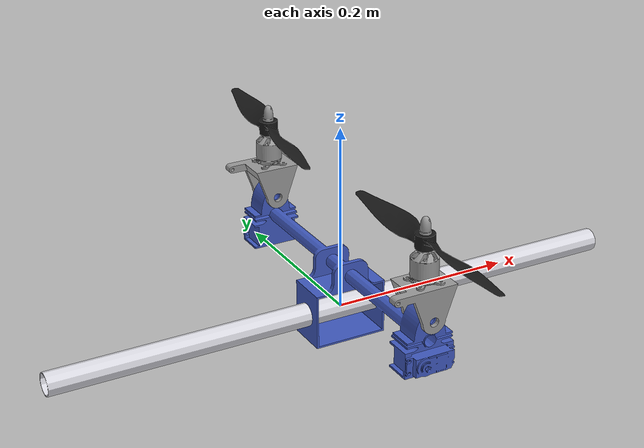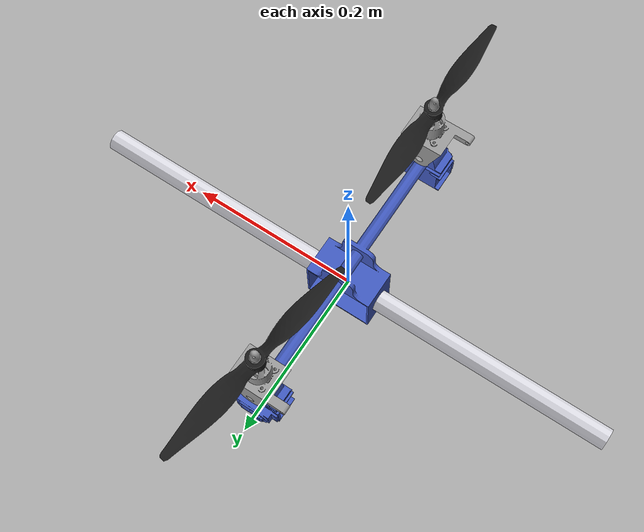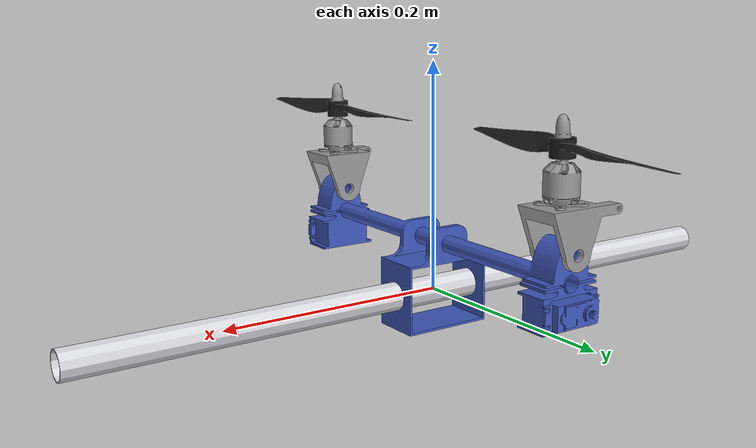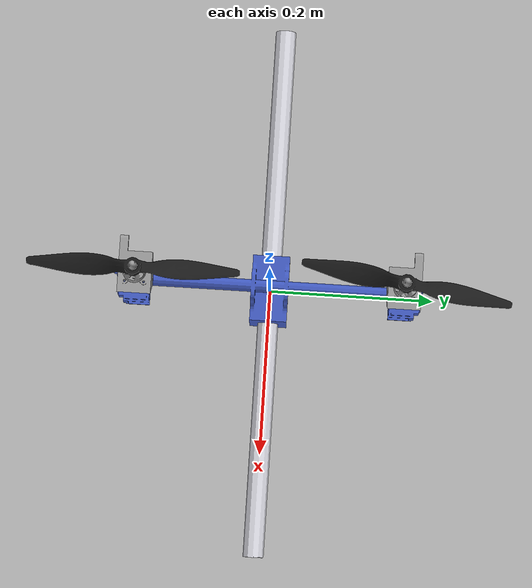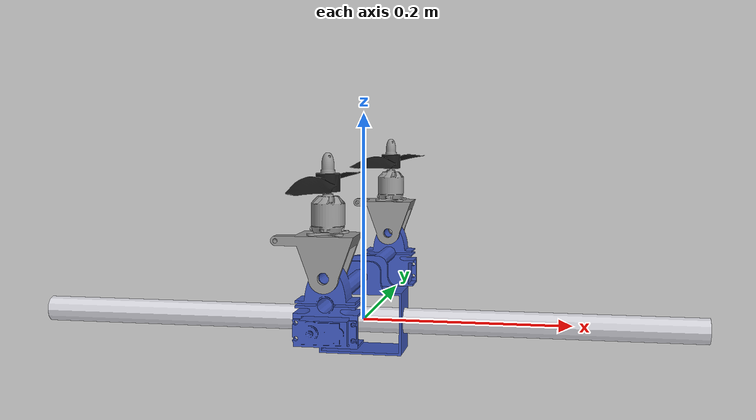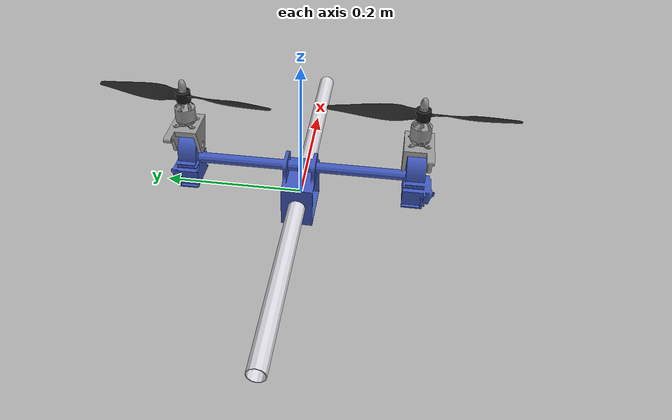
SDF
<?xml version="1.0"?>
<sdf version="1.9">
  <model name="bi_copter">
    <self_collide>false</self_collide>

    <!-- base_link = 650 mm rod + central bracket (L1) lumped together          -->
    <link name="base_link">
      <inertial>
        <pose>-2.5277653200474099e-05 0.00010758099893504231 0.01852242512855103 0 0 0</pose>
        <mass>0.30996513132738002</mass>
        <inertia>
          <ixx>0.00031301646254294779</ixx>
          <ixy>6.2788424150946687e-10</ixy>
          <ixz>1.081040236390575e-07</ixz>
          <iyy>0.0048290927913827207</iyy>
          <iyz>-4.6008776051197722e-07</iyz>
          <izz>0.0048874289798044633</izz>
        </inertia>
      </inertial>

      <collision name="rod_collision">
        <pose>0 0 0 0 1.5707963267948966 0</pose>
        <geometry>
          <cylinder>
            <length>0.65</length>
            <radius>0.0125</radius>
          </cylinder>
        </geometry>
      </collision>
      <collision name="frame_collision">
        <pose>0 0 0.024 0 0 0</pose>
        <geometry>
          <box>
            <size>0.080 0.380 0.108</size>
          </box>
        </geometry>
        <surface>
          <friction>
            <ode>
              <mu>0.8</mu>
              <mu2>0.8</mu2>
            </ode>
          </friction>
        </surface>
      </collision>

      <visual name="rod_visual">
        <geometry>
          <mesh>
            <uri>model://bi_copter_control/meshes/base_link.STL</uri>
          </mesh>
        </geometry>
        <material>
          <ambient>0.85 0.85 0.88 1</ambient>
          <diffuse>0.85 0.85 0.88 1</diffuse>
          <specular>0.3 0.3 0.3 1</specular>
        </material>
      </visual>
      <visual name="frame_visual">
        <pose>-0.018826754531935299 0.065712117311469406 -0.032330032422266598 1.5707963267949003 0 0</pose>
        <geometry>
          <mesh>
            <uri>model://bi_copter_control/meshes/L1.STL</uri>
          </mesh>
        </geometry>
        <material>
          <ambient>0.25 0.35 0.75 1</ambient>
          <diffuse>0.25 0.35 0.75 1</diffuse>
          <specular>0.2 0.2 0.2 1</specular>
        </material>
      </visual>

      <!-- ===================== sensors (PX4 compatible names) ===================== -->
      <sensor name="imu_sensor" type="imu">
        <always_on>1</always_on>
        <update_rate>250</update_rate>
        <imu>
          <angular_velocity>
            <x><noise type="gaussian"><mean>0</mean><stddev>0.0003394</stddev></noise></x>
            <y><noise type="gaussian"><mean>0</mean><stddev>0.0003394</stddev></noise></y>
            <z><noise type="gaussian"><mean>0</mean><stddev>0.0003394</stddev></noise></z>
          </angular_velocity>
          <linear_acceleration>
            <x><noise type="gaussian"><mean>0</mean><stddev>0.004</stddev></noise></x>
            <y><noise type="gaussian"><mean>0</mean><stddev>0.004</stddev></noise></y>
            <z><noise type="gaussian"><mean>0</mean><stddev>0.004</stddev></noise></z>
          </linear_acceleration>
        </imu>
      </sensor>
      <sensor name="air_pressure_sensor" type="air_pressure">
        <always_on>1</always_on>
        <update_rate>50</update_rate>
        <air_pressure>
          <pressure>
            <noise type="gaussian">
              <mean>0</mean>
              <stddev>0.01</stddev>
            </noise>
          </pressure>
        </air_pressure>
      </sensor>
      <sensor name="magnetometer_sensor" type="magnetometer">
        <always_on>1</always_on>
        <update_rate>100</update_rate>
        <magnetometer>
          <x><noise type="gaussian"><stddev>0.0001</stddev></noise></x>
          <y><noise type="gaussian"><stddev>0.0001</stddev></noise></y>
          <z><noise type="gaussian"><stddev>0.0001</stddev></noise></z>
        </magnetometer>
      </sensor>
      <sensor name="navsat_sensor" type="navsat">
        <always_on>1</always_on>
        <update_rate>30</update_rate>
      </sensor>
    </link>

    <!-- LEFT tilt servo (L2) + LEFT propeller (L4)                             -->
    <joint name="left_tilt_joint" type="revolute">
      <pose relative_to="base_link">1.4187440185199631e-05 0.141 0.068 1.5707963267948966 0 -3.1415926535897931</pose>
      <parent>base_link</parent>
      <child>left_tilt_link</child>
      <axis>
        <xyz>0 0 1</xyz>
        <limit>
          <lower>-0.5236</lower>
          <upper>0.5236</upper>
          <effort>2</effort>
          <velocity>10</velocity>
        </limit>
        <dynamics>
          <damping>0.0005</damping>
        </dynamics>
      </axis>
    </joint>
    <link name="left_tilt_link">
      <pose relative_to="left_tilt_joint">0 0 0 0 0 0</pose>
      <inertial>
        <pose>0.00063945180121196903 0.041985470493005599 0.020285614781496202 0 0 0</pose>
        <mass>0.075691766021955195</mass>
        <inertia>
          <ixx>1.3600308887235101e-05</ixx>
          <ixy>-3.4890522252550501e-07</ixy>
          <ixz>-6.7102637749309396e-07</ixz>
          <iyy>1.61394826592292e-05</iyy>
          <iyz>-1.5868331703718001e-07</iyz>
          <izz>1.35431982502197e-05</izz>
        </inertia>
      </inertial>
      <collision name="left_tilt_collision">
        <pose>0.0095 0.0447 0.02 0 0 0</pose>
        <geometry>
          <box>
            <size>0.069 0.114 0.040</size>
          </box>
        </geometry>
      </collision>
      <visual name="left_tilt_visual">
        <geometry>
          <mesh>
            <uri>model://bi_copter_control/meshes/L2.STL</uri>
          </mesh>
        </geometry>
        <material>
          <ambient>0.6 0.6 0.6 1</ambient>
          <diffuse>0.6 0.6 0.6 1</diffuse>
        </material>
      </visual>
    </link>

    <joint name="left_prop_joint" type="revolute">
      <pose relative_to="left_tilt_link">0 0.069843467743183105 0.020000485194281398 -1.5707963267948966 0 0</pose>
      <parent>left_tilt_link</parent>
      <child>left_prop_link</child>
      <axis>
        <xyz>0 0 1</xyz>
        <limit>
          <lower>-1e16</lower>
          <upper>1e16</upper>
        </limit>
        <dynamics>
          <spring_reference>0</spring_reference>
          <spring_stiffness>0</spring_stiffness>
        </dynamics>
      </axis>
    </joint>
    <link name="left_prop_link">
      <pose relative_to="left_prop_joint">0 0 0 0 0 0</pose>
      <inertial>
        <pose>0 0 0.00805127 0 0 0</pose>
        <mass>0.0097604906464946097</mass>
        <inertia>
          <!-- symmetric approximation of the CAD prop inertia (spin axis = z) -->
          <ixx>1.06e-05</ixx>
          <ixy>0</ixy>
          <ixz>0</ixz>
          <iyy>1.06e-05</iyy>
          <iyz>0</iyz>
          <izz>2.0957e-05</izz>
        </inertia>
      </inertial>
      <visual name="left_prop_visual">
        <pose>0 0 0 1.5707963267948966 0 2.997185</pose>
        <geometry>
          <mesh>
            <uri>model://bi_copter_control/meshes/L4.STL</uri>
          </mesh>
        </geometry>
        <material>
          <ambient>0.1 0.1 0.1 1</ambient>
          <diffuse>0.1 0.1 0.1 1</diffuse>
        </material>
      </visual>
    </link>

    <!-- RIGHT tilt servo (L3) + RIGHT propeller (L5)                           -->
    <joint name="right_tilt_joint" type="revolute">
      <pose relative_to="base_link">-1.4187440185397389e-05 -0.181 0.068 1.5707963267948966 0 3.1415926535897931</pose>
      <parent>base_link</parent>
      <child>right_tilt_link</child>
      <axis>
        <xyz>0 0 1</xyz>
        <limit>
          <lower>-0.5236</lower>
          <upper>0.5236</upper>
          <effort>2</effort>
          <velocity>10</velocity>
        </limit>
        <dynamics>
          <damping>0.0005</damping>
        </dynamics>
      </axis>
    </joint>
    <link name="right_tilt_link">
      <pose relative_to="right_tilt_joint">0 0 0 0 0 0</pose>
      <inertial>
        <pose>0.00064205813207651903 0.041983366078535499 0.019708290626908199 0 0 0</pose>
        <mass>0.075705437464590894</mass>
        <inertia>
          <ixx>1.3602712306349e-05</ixx>
          <ixy>-3.4994473258598198e-07</ixy>
          <ixz>6.8176489825761397e-07</ixz>
          <iyy>1.61425065106366e-05</iyy>
          <iyz>1.6248376995028801e-07</iyz>
          <izz>1.35454251706912e-05</izz>
        </inertia>
      </inertial>
      <collision name="right_tilt_collision">
        <pose>0.0095 0.0447 0.02 0 0 0</pose>
        <geometry>
          <box>
            <size>0.069 0.114 0.040</size>
          </box>
        </geometry>
      </collision>
      <visual name="right_tilt_visual">
        <geometry>
          <mesh>
            <uri>model://bi_copter_control/meshes/L3.STL</uri>
          </mesh>
        </geometry>
        <material>
          <ambient>0.6 0.6 0.6 1</ambient>
          <diffuse>0.6 0.6 0.6 1</diffuse>
        </material>
      </visual>
    </link>

    <joint name="right_prop_joint" type="revolute">
      <pose relative_to="right_tilt_link">0 0.069843467743182994 0.020000485194281398 -1.5707963267948966 0 0</pose>
      <parent>right_tilt_link</parent>
      <child>right_prop_link</child>
      <axis>
        <xyz>0 0 1</xyz>
        <limit>
          <lower>-1e16</lower>
          <upper>1e16</upper>
        </limit>
        <dynamics>
          <spring_reference>0</spring_reference>
          <spring_stiffness>0</spring_stiffness>
        </dynamics>
      </axis>
    </joint>
    <link name="right_prop_link">
      <pose relative_to="right_prop_joint">0 0 0 0 0 0</pose>
      <inertial>
        <pose>0 0 0.00805127 0 0 0</pose>
        <mass>0.0097605620215964004</mass>
        <inertia>
          <ixx>1.06e-05</ixx>
          <ixy>0</ixy>
          <ixz>0</ixz>
          <iyy>1.06e-05</iyy>
          <iyz>0</iyz>
          <izz>2.0958e-05</izz>
        </inertia>
      </inertial>
      <visual name="right_prop_visual">
        <pose>0 0 0 1.5707963267948966 0 -3.14159265358979</pose>
        <geometry>
          <mesh>
            <uri>model://bi_copter_control/meshes/L5.STL</uri>
          </mesh>
        </geometry>
        <material>
          <ambient>0.1 0.1 0.1 1</ambient>
          <diffuse>0.1 0.1 0.1 1</diffuse>
        </material>
      </visual>
    </link>

    <!-- Motor / propeller thrust model                                         -->
    <!--   10x5.5 prop: kF = 6.0e-6 N/(rad/s)^2  -> 6 N max thrust @ 1000 rad/s -->
    <!--   kM = 0.016 m  (drag torque = kM * thrust)                            -->
    <plugin filename="gz-sim-multicopter-motor-model-system"
            name="gz::sim::systems::MulticopterMotorModel">
      <robotNamespace>bi_copter</robotNamespace>
      <jointName>left_prop_joint</jointName>
      <linkName>left_prop_link</linkName>
      <turningDirection>ccw</turningDirection>
      <timeConstantUp>0.0125</timeConstantUp>
      <timeConstantDown>0.025</timeConstantDown>
      <maxRotVelocity>1000.0</maxRotVelocity>
      <motorConstant>6.0e-06</motorConstant>
      <momentConstant>0.016</momentConstant>
      <commandSubTopic>command/motor_speed</commandSubTopic>
      <actuator_number>0</actuator_number>
      <rotorDragCoefficient>8.06428e-05</rotorDragCoefficient>
      <rollingMomentCoefficient>1e-06</rollingMomentCoefficient>
      <rotorVelocitySlowdownSim>10</rotorVelocitySlowdownSim>
      <motorType>velocity</motorType>
    </plugin>
    <plugin filename="gz-sim-multicopter-motor-model-system"
            name="gz::sim::systems::MulticopterMotorModel">
      <robotNamespace>bi_copter</robotNamespace>
      <jointName>right_prop_joint</jointName>
      <linkName>right_prop_link</linkName>
      <turningDirection>cw</turningDirection>
      <timeConstantUp>0.0125</timeConstantUp>
      <timeConstantDown>0.025</timeConstantDown>
      <maxRotVelocity>1000.0</maxRotVelocity>
      <motorConstant>6.0e-06</motorConstant>
      <momentConstant>0.016</momentConstant>
      <commandSubTopic>command/motor_speed</commandSubTopic>
      <actuator_number>1</actuator_number>
      <rotorDragCoefficient>8.06428e-05</rotorDragCoefficient>
      <rollingMomentCoefficient>1e-06</rollingMomentCoefficient>
      <rotorVelocitySlowdownSim>10</rotorVelocitySlowdownSim>
      <motorType>velocity</motorType>
    </plugin>

    <!-- Tilt servos: velocity-limited position servos (~0.1 s / 60 deg)        -->
    <plugin filename="gz-sim-joint-position-controller-system"
            name="gz::sim::systems::JointPositionController">
      <joint_name>left_tilt_joint</joint_name>
      <sub_topic>servo_0</sub_topic>
      <use_velocity_commands>true</use_velocity_commands>
      <cmd_max>10</cmd_max>
      <cmd_min>-10</cmd_min>
      <initial_position>0</initial_position>
    </plugin>
    <plugin filename="gz-sim-joint-position-controller-system"
            name="gz::sim::systems::JointPositionController">
      <joint_name>right_tilt_joint</joint_name>
      <sub_topic>servo_1</sub_topic>
      <use_velocity_commands>true</use_velocity_commands>
      <cmd_max>10</cmd_max>
      <cmd_min>-10</cmd_min>
      <initial_position>0</initial_position>
    </plugin>

    <!-- State publishers (for ROS 2 / RViz)                                    -->
    <plugin filename="gz-sim-joint-state-publisher-system"
            name="gz::sim::systems::JointStatePublisher">
    </plugin>
    <plugin filename="gz-sim-odometry-publisher-system"
            name="gz::sim::systems::OdometryPublisher">
      <dimensions>3</dimensions>
      <odom_frame>odom</odom_frame>
      <robot_base_frame>base_link</robot_base_frame>
      <odom_publish_frequency>100</odom_publish_frequency>
    </plugin>
  </model>
</sdf>
